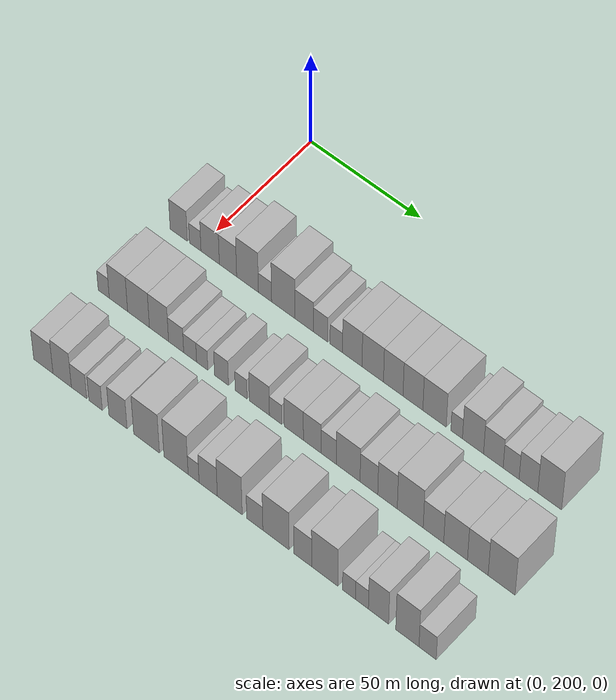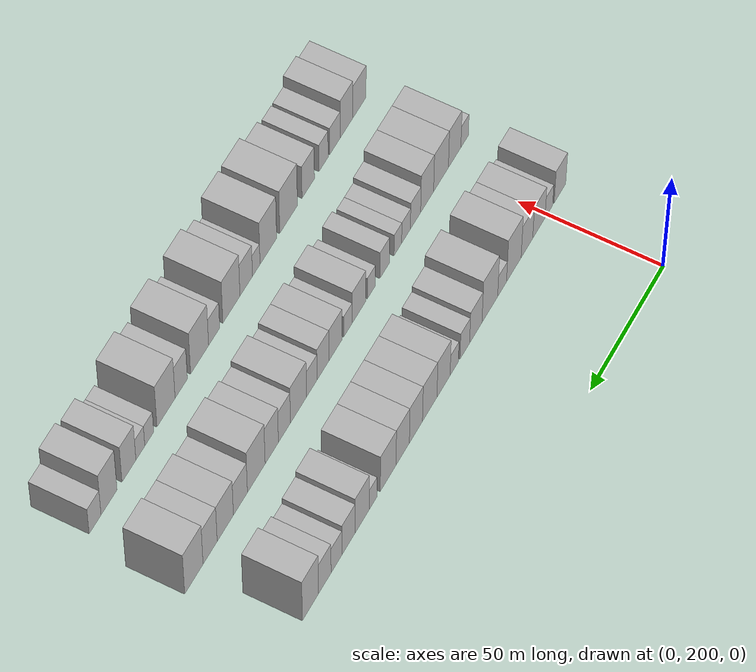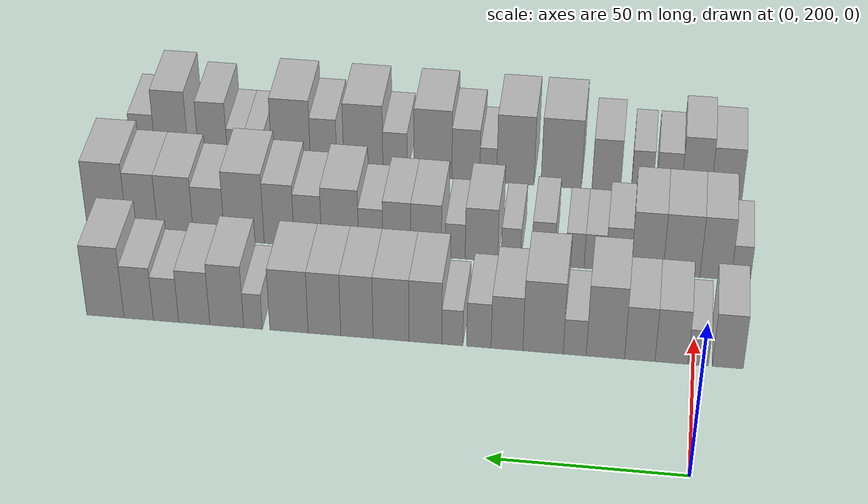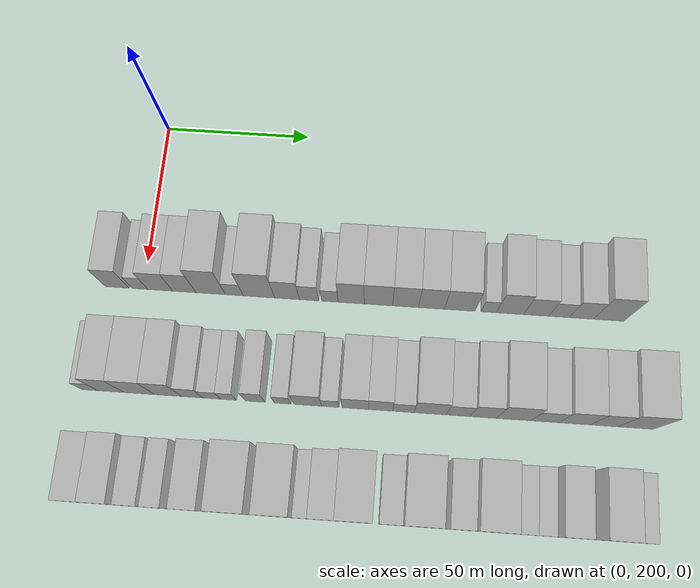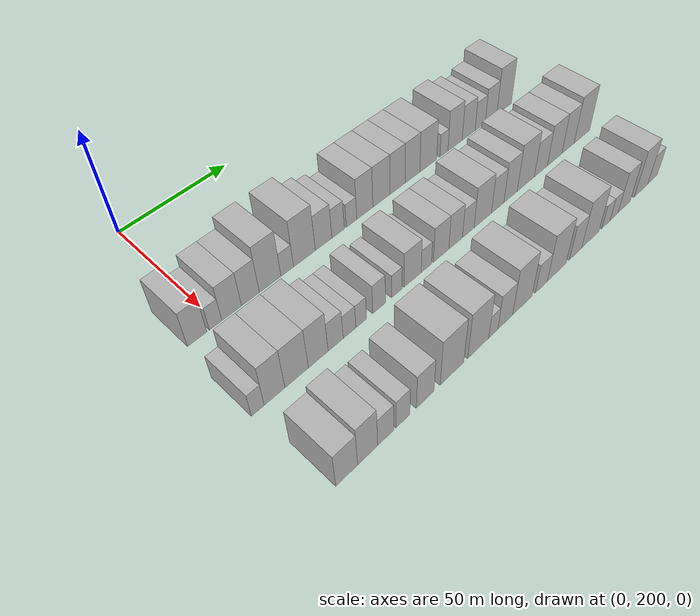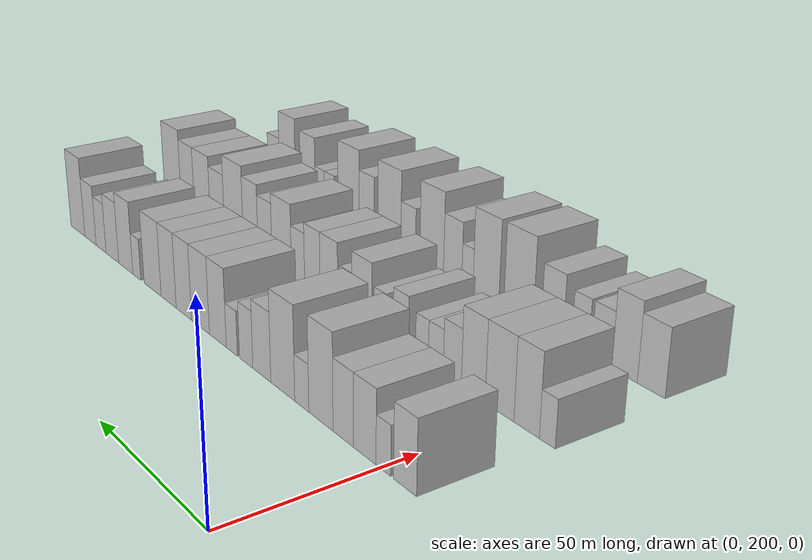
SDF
<sdf version="1.6">
 <world name="default">
  <model name="building_61">
   <static>1</static>
   <pose>50.0000 191.2016 0 0.000000 0.000000 0.000000</pose>
   <link name="link">
    <pose>0 0 9.00 0 0 0</pose>
    <collision name="collision"><geometry><box><size>20.0000 7.9686 18.0000</size></box></geometry></collision>
    <visual name="visual">
     <cast_shadows>0</cast_shadows>
     <geometry><box><size>20.0000 7.9686 18.0000</size></box></geometry>
     <material>
      <script>
       <uri>model://HANNAS_wall/materials/scripts</uri>
       <uri>model://HANNAS_wall/materials/textures</uri>
       <name>vrc/HANNAS_wall</name>
      </script>
     </material>
    </visual>
   </link>
  </model>
  <model name="building_62">
   <static>1</static>
   <pose>50.0000 198.8289 0 0.000000 0.000000 0.000000</pose>
   <link name="link">
    <pose>0 0 6.00 0 0 0</pose>
    <collision name="collision"><geometry><box><size>20.0000 5.2860 12.0000</size></box></geometry></collision>
    <visual name="visual">
     <cast_shadows>0</cast_shadows>
     <geometry><box><size>20.0000 5.2860 12.0000</size></box></geometry>
     <material>
      <script>
       <uri>model://HANNAS_wall/materials/scripts</uri>
       <uri>model://HANNAS_wall/materials/textures</uri>
       <name>vrc/HANNAS_wall</name>
      </script>
     </material>
    </visual>
   </link>
  </model>
  <model name="building_63">
   <static>1</static>
   <pose>50.0000 205.6955 0 0.000000 0.000000 0.000000</pose>
   <link name="link">
    <pose>0 0 9.00 0 0 0</pose>
    <collision name="collision"><geometry><box><size>20.0000 8.4470 18.0000</size></box></geometry></collision>
    <visual name="visual">
     <cast_shadows>0</cast_shadows>
     <geometry><box><size>20.0000 8.4470 18.0000</size></box></geometry>
     <material>
      <script>
       <uri>model://HANNAS_wall/materials/scripts</uri>
       <uri>model://HANNAS_wall/materials/textures</uri>
       <name>vrc/HANNAS_wall</name>
      </script>
     </material>
    </visual>
   </link>
  </model>
  <model name="building_64">
   <static>1</static>
   <pose>50.0000 213.8667 0 0.000000 0.000000 0.000000</pose>
   <link name="link">
    <pose>0 0 9.00 0 0 0</pose>
    <collision name="collision"><geometry><box><size>20.0000 7.8954 18.0000</size></box></geometry></collision>
    <visual name="visual">
     <cast_shadows>0</cast_shadows>
     <geometry><box><size>20.0000 7.8954 18.0000</size></box></geometry>
     <material>
      <script>
       <uri>model://HANNAS_wall/materials/scripts</uri>
       <uri>model://HANNAS_wall/materials/textures</uri>
       <name>vrc/HANNAS_wall</name>
      </script>
     </material>
    </visual>
   </link>
  </model>
  <model name="building_65">
   <static>1</static>
   <pose>50.0000 222.7764 0 0.000000 0.000000 0.000000</pose>
   <link name="link">
    <pose>0 0 12.00 0 0 0</pose>
    <collision name="collision"><geometry><box><size>20.0000 9.9240 24.0000</size></box></geometry></collision>
    <visual name="visual">
     <cast_shadows>0</cast_shadows>
     <geometry><box><size>20.0000 9.9240 24.0000</size></box></geometry>
     <material>
      <script>
       <uri>model://HANNAS_wall/materials/scripts</uri>
       <uri>model://HANNAS_wall/materials/textures</uri>
       <name>vrc/HANNAS_wall</name>
      </script>
     </material>
    </visual>
   </link>
  </model>
  <model name="building_66">
   <static>1</static>
   <pose>50.0000 230.7208 0 0.000000 0.000000 0.000000</pose>
   <link name="link">
    <pose>0 0 6.00 0 0 0</pose>
    <collision name="collision"><geometry><box><size>20.0000 5.9649 12.0000</size></box></geometry></collision>
    <visual name="visual">
     <cast_shadows>0</cast_shadows>
     <geometry><box><size>20.0000 5.9649 12.0000</size></box></geometry>
     <material>
      <script>
       <uri>model://HANNAS_wall/materials/scripts</uri>
       <uri>model://HANNAS_wall/materials/textures</uri>
       <name>vrc/HANNAS_wall</name>
      </script>
     </material>
    </visual>
   </link>
  </model>
  <model name="building_67">
   <static>1</static>
   <pose>50.0000 238.9798 0 0.000000 0.000000 0.000000</pose>
   <link name="link">
    <pose>0 0 12.00 0 0 0</pose>
    <collision name="collision"><geometry><box><size>20.0000 10.5530 24.0000</size></box></geometry></collision>
    <visual name="visual">
     <cast_shadows>0</cast_shadows>
     <geometry><box><size>20.0000 10.5530 24.0000</size></box></geometry>
     <material>
      <script>
       <uri>model://HANNAS_wall/materials/scripts</uri>
       <uri>model://HANNAS_wall/materials/textures</uri>
       <name>vrc/HANNAS_wall</name>
      </script>
     </material>
    </visual>
   </link>
  </model>
  <model name="building_68">
   <static>1</static>
   <pose>50.0000 248.4079 0 0.000000 0.000000 0.000000</pose>
   <link name="link">
    <pose>0 0 9.00 0 0 0</pose>
    <collision name="collision"><geometry><box><size>20.0000 8.3033 18.0000</size></box></geometry></collision>
    <visual name="visual">
     <cast_shadows>0</cast_shadows>
     <geometry><box><size>20.0000 8.3033 18.0000</size></box></geometry>
     <material>
      <script>
       <uri>model://HANNAS_wall/materials/scripts</uri>
       <uri>model://HANNAS_wall/materials/textures</uri>
       <name>vrc/HANNAS_wall</name>
      </script>
     </material>
    </visual>
   </link>
  </model>
  <model name="building_69">
   <static>1</static>
   <pose>50.0000 255.7667 0 0.000000 0.000000 0.000000</pose>
   <link name="link">
    <pose>0 0 7.50 0 0 0</pose>
    <collision name="collision"><geometry><box><size>20.0000 6.4144 15.0000</size></box></geometry></collision>
    <visual name="visual">
     <cast_shadows>0</cast_shadows>
     <geometry><box><size>20.0000 6.4144 15.0000</size></box></geometry>
     <material>
      <script>
       <uri>model://HANNAS_wall/materials/scripts</uri>
       <uri>model://HANNAS_wall/materials/textures</uri>
       <name>vrc/HANNAS_wall</name>
      </script>
     </material>
    </visual>
   </link>
  </model>
  <model name="building_70">
   <static>1</static>
   <pose>50.0000 262.7397 0 0.000000 0.000000 0.000000</pose>
   <link name="link">
    <pose>0 0 6.00 0 0 0</pose>
    <collision name="collision"><geometry><box><size>20.0000 5.5316 12.0000</size></box></geometry></collision>
    <visual name="visual">
     <cast_shadows>0</cast_shadows>
     <geometry><box><size>20.0000 5.5316 12.0000</size></box></geometry>
     <material>
      <script>
       <uri>model://HANNAS_wall/materials/scripts</uri>
       <uri>model://HANNAS_wall/materials/textures</uri>
       <name>vrc/HANNAS_wall</name>
      </script>
     </material>
    </visual>
   </link>
  </model>
  <model name="building_71">
   <static>1</static>
   <pose>50.0000 269.8401 0 0.000000 0.000000 0.000000</pose>
   <link name="link">
    <pose>0 0 10.50 0 0 0</pose>
    <collision name="collision"><geometry><box><size>20.0000 8.6693 21.0000</size></box></geometry></collision>
    <visual name="visual">
     <cast_shadows>0</cast_shadows>
     <geometry><box><size>20.0000 8.6693 21.0000</size></box></geometry>
     <material>
      <script>
       <uri>model://HANNAS_wall/materials/scripts</uri>
       <uri>model://HANNAS_wall/materials/textures</uri>
       <name>vrc/HANNAS_wall</name>
      </script>
     </material>
    </visual>
   </link>
  </model>
  <model name="building_72">
   <static>1</static>
   <pose>50.0000 278.9165 0 0.000000 0.000000 0.000000</pose>
   <link name="link">
    <pose>0 0 10.50 0 0 0</pose>
    <collision name="collision"><geometry><box><size>20.0000 9.4835 21.0000</size></box></geometry></collision>
    <visual name="visual">
     <cast_shadows>0</cast_shadows>
     <geometry><box><size>20.0000 9.4835 21.0000</size></box></geometry>
     <material>
      <script>
       <uri>model://HANNAS_wall/materials/scripts</uri>
       <uri>model://HANNAS_wall/materials/textures</uri>
       <name>vrc/HANNAS_wall</name>
      </script>
     </material>
    </visual>
   </link>
  </model>
  <model name="building_73">
   <static>1</static>
   <pose>50.0000 287.9400 0 0.000000 0.000000 0.000000</pose>
   <link name="link">
    <pose>0 0 10.50 0 0 0</pose>
    <collision name="collision"><geometry><box><size>20.0000 8.5635 21.0000</size></box></geometry></collision>
    <visual name="visual">
     <cast_shadows>0</cast_shadows>
     <geometry><box><size>20.0000 8.5635 21.0000</size></box></geometry>
     <material>
      <script>
       <uri>model://HANNAS_wall/materials/scripts</uri>
       <uri>model://HANNAS_wall/materials/textures</uri>
       <name>vrc/HANNAS_wall</name>
      </script>
     </material>
    </visual>
   </link>
  </model>
  <model name="building_74">
   <static>1</static>
   <pose>50.0000 296.5564 0 0.000000 0.000000 0.000000</pose>
   <link name="link">
    <pose>0 0 10.50 0 0 0</pose>
    <collision name="collision"><geometry><box><size>20.0000 8.6693 21.0000</size></box></geometry></collision>
    <visual name="visual">
     <cast_shadows>0</cast_shadows>
     <geometry><box><size>20.0000 8.6693 21.0000</size></box></geometry>
     <material>
      <script>
       <uri>model://HANNAS_wall/materials/scripts</uri>
       <uri>model://HANNAS_wall/materials/textures</uri>
       <name>vrc/HANNAS_wall</name>
      </script>
     </material>
    </visual>
   </link>
  </model>
  <model name="building_75">
   <static>1</static>
   <pose>50.0000 305.9884 0 0.000000 0.000000 0.000000</pose>
   <link name="link">
    <pose>0 0 10.50 0 0 0</pose>
    <collision name="collision"><geometry><box><size>20.0000 10.1946 21.0000</size></box></geometry></collision>
    <visual name="visual">
     <cast_shadows>0</cast_shadows>
     <geometry><box><size>20.0000 10.1946 21.0000</size></box></geometry>
     <material>
      <script>
       <uri>model://HANNAS_wall/materials/scripts</uri>
       <uri>model://HANNAS_wall/materials/textures</uri>
       <name>vrc/HANNAS_wall</name>
      </script>
     </material>
    </visual>
   </link>
  </model>
  <model name="building_76">
   <static>1</static>
   <pose>50.0000 315.5898 0 0.000000 0.000000 0.000000</pose>
   <link name="link">
    <pose>0 0 6.00 0 0 0</pose>
    <collision name="collision"><geometry><box><size>20.0000 5.0083 12.0000</size></box></geometry></collision>
    <visual name="visual">
     <cast_shadows>0</cast_shadows>
     <geometry><box><size>20.0000 5.0083 12.0000</size></box></geometry>
     <material>
      <script>
       <uri>model://HANNAS_wall/materials/scripts</uri>
       <uri>model://HANNAS_wall/materials/textures</uri>
       <name>vrc/HANNAS_wall</name>
      </script>
     </material>
    </visual>
   </link>
  </model>
  <model name="building_77">
   <static>1</static>
   <pose>50.0000 322.6379 0 0.000000 0.000000 0.000000</pose>
   <link name="link">
    <pose>0 0 10.50 0 0 0</pose>
    <collision name="collision"><geometry><box><size>20.0000 9.0878 21.0000</size></box></geometry></collision>
    <visual name="visual">
     <cast_shadows>0</cast_shadows>
     <geometry><box><size>20.0000 9.0878 21.0000</size></box></geometry>
     <material>
      <script>
       <uri>model://HANNAS_wall/materials/scripts</uri>
       <uri>model://HANNAS_wall/materials/textures</uri>
       <name>vrc/HANNAS_wall</name>
      </script>
     </material>
    </visual>
   </link>
  </model>
  <model name="building_78">
   <static>1</static>
   <pose>50.0000 331.3846 0 0.000000 0.000000 0.000000</pose>
   <link name="link">
    <pose>0 0 9.00 0 0 0</pose>
    <collision name="collision"><geometry><box><size>20.0000 8.4055 18.0000</size></box></geometry></collision>
    <visual name="visual">
     <cast_shadows>0</cast_shadows>
     <geometry><box><size>20.0000 8.4055 18.0000</size></box></geometry>
     <material>
      <script>
       <uri>model://HANNAS_wall/materials/scripts</uri>
       <uri>model://HANNAS_wall/materials/textures</uri>
       <name>vrc/HANNAS_wall</name>
      </script>
     </material>
    </visual>
   </link>
  </model>
  <model name="building_79">
   <static>1</static>
   <pose>50.0000 338.9868 0 0.000000 0.000000 0.000000</pose>
   <link name="link">
    <pose>0 0 7.50 0 0 0</pose>
    <collision name="collision"><geometry><box><size>20.0000 6.7990 15.0000</size></box></geometry></collision>
    <visual name="visual">
     <cast_shadows>0</cast_shadows>
     <geometry><box><size>20.0000 6.7990 15.0000</size></box></geometry>
     <material>
      <script>
       <uri>model://HANNAS_wall/materials/scripts</uri>
       <uri>model://HANNAS_wall/materials/textures</uri>
       <name>vrc/HANNAS_wall</name>
      </script>
     </material>
    </visual>
   </link>
  </model>
  <model name="building_80">
   <static>1</static>
   <pose>50.0000 346.3585 0 0.000000 0.000000 0.000000</pose>
   <link name="link">
    <pose>0 0 9.00 0 0 0</pose>
    <collision name="collision"><geometry><box><size>20.0000 7.9446 18.0000</size></box></geometry></collision>
    <visual name="visual">
     <cast_shadows>0</cast_shadows>
     <geometry><box><size>20.0000 7.9446 18.0000</size></box></geometry>
     <material>
      <script>
       <uri>model://HANNAS_wall/materials/scripts</uri>
       <uri>model://HANNAS_wall/materials/textures</uri>
       <name>vrc/HANNAS_wall</name>
      </script>
     </material>
    </visual>
   </link>
  </model>
  <model name="building_81">
   <static>1</static>
   <pose>50.0000 355.3782 0 0.000000 0.000000 0.000000</pose>
   <link name="link">
    <pose>0 0 12.00 0 0 0</pose>
    <collision name="collision"><geometry><box><size>20.0000 10.0947 24.0000</size></box></geometry></collision>
    <visual name="visual">
     <cast_shadows>0</cast_shadows>
     <geometry><box><size>20.0000 10.0947 24.0000</size></box></geometry>
     <material>
      <script>
       <uri>model://HANNAS_wall/materials/scripts</uri>
       <uri>model://HANNAS_wall/materials/textures</uri>
       <name>vrc/HANNAS_wall</name>
      </script>
     </material>
    </visual>
   </link>
  </model>
  <model name="building_145">
   <static>1</static>
   <pose>85.0000 187.9739 0 0.000000 0.000000 0.000000</pose>
   <link name="link">
    <pose>0 0 6.00 0 0 0</pose>
    <collision name="collision"><geometry><box><size>20.0000 5.1245 12.0000</size></box></geometry></collision>
    <visual name="visual">
     <cast_shadows>0</cast_shadows>
     <geometry><box><size>20.0000 5.1245 12.0000</size></box></geometry>
     <material>
      <script>
       <uri>model://HANNAS_wall/materials/scripts</uri>
       <uri>model://HANNAS_wall/materials/textures</uri>
       <name>vrc/HANNAS_wall</name>
      </script>
     </material>
    </visual>
   </link>
  </model>
  <model name="building_146">
   <static>1</static>
   <pose>85.0000 194.7652 0 0.000000 0.000000 0.000000</pose>
   <link name="link">
    <pose>0 0 10.50 0 0 0</pose>
    <collision name="collision"><geometry><box><size>20.0000 8.4580 21.0000</size></box></geometry></collision>
    <visual name="visual">
     <cast_shadows>0</cast_shadows>
     <geometry><box><size>20.0000 8.4580 21.0000</size></box></geometry>
     <material>
      <script>
       <uri>model://HANNAS_wall/materials/scripts</uri>
       <uri>model://HANNAS_wall/materials/textures</uri>
       <name>vrc/HANNAS_wall</name>
      </script>
     </material>
    </visual>
   </link>
  </model>
  <model name="building_147">
   <static>1</static>
   <pose>85.0000 204.0003 0 0.000000 0.000000 0.000000</pose>
   <link name="link">
    <pose>0 0 10.50 0 0 0</pose>
    <collision name="collision"><geometry><box><size>20.0000 10.0123 21.0000</size></box></geometry></collision>
    <visual name="visual">
     <cast_shadows>0</cast_shadows>
     <geometry><box><size>20.0000 10.0123 21.0000</size></box></geometry>
     <material>
      <script>
       <uri>model://HANNAS_wall/materials/scripts</uri>
       <uri>model://HANNAS_wall/materials/textures</uri>
       <name>vrc/HANNAS_wall</name>
      </script>
     </material>
    </visual>
   </link>
  </model>
  <model name="building_148">
   <static>1</static>
   <pose>85.0000 213.3714 0 0.000000 0.000000 0.000000</pose>
   <link name="link">
    <pose>0 0 10.50 0 0 0</pose>
    <collision name="collision"><geometry><box><size>20.0000 8.7300 21.0000</size></box></geometry></collision>
    <visual name="visual">
     <cast_shadows>0</cast_shadows>
     <geometry><box><size>20.0000 8.7300 21.0000</size></box></geometry>
     <material>
      <script>
       <uri>model://HANNAS_wall/materials/scripts</uri>
       <uri>model://HANNAS_wall/materials/textures</uri>
       <name>vrc/HANNAS_wall</name>
      </script>
     </material>
    </visual>
   </link>
  </model>
  <model name="building_149">
   <static>1</static>
   <pose>85.0000 221.1716 0 0.000000 0.000000 0.000000</pose>
   <link name="link">
    <pose>0 0 7.50 0 0 0</pose>
    <collision name="collision"><geometry><box><size>20.0000 6.8703 15.0000</size></box></geometry></collision>
    <visual name="visual">
     <cast_shadows>0</cast_shadows>
     <geometry><box><size>20.0000 6.8703 15.0000</size></box></geometry>
     <material>
      <script>
       <uri>model://HANNAS_wall/materials/scripts</uri>
       <uri>model://HANNAS_wall/materials/textures</uri>
       <name>vrc/HANNAS_wall</name>
      </script>
     </material>
    </visual>
   </link>
  </model>
  <model name="building_150">
   <static>1</static>
   <pose>85.0000 227.5275 0 0.000000 0.000000 0.000000</pose>
   <link name="link">
    <pose>0 0 6.00 0 0 0</pose>
    <collision name="collision"><geometry><box><size>20.0000 5.8414 12.0000</size></box></geometry></collision>
    <visual name="visual">
     <cast_shadows>0</cast_shadows>
     <geometry><box><size>20.0000 5.8414 12.0000</size></box></geometry>
     <material>
      <script>
       <uri>model://HANNAS_wall/materials/scripts</uri>
       <uri>model://HANNAS_wall/materials/textures</uri>
       <name>vrc/HANNAS_wall</name>
      </script>
     </material>
    </visual>
   </link>
  </model>
  <model name="building_151">
   <static>1</static>
   <pose>85.0000 232.9910 0 0.000000 0.000000 0.000000</pose>
   <link name="link">
    <pose>0 0 6.00 0 0 0</pose>
    <collision name="collision"><geometry><box><size>20.0000 5.0857 12.0000</size></box></geometry></collision>
    <visual name="visual">
     <cast_shadows>0</cast_shadows>
     <geometry><box><size>20.0000 5.0857 12.0000</size></box></geometry>
     <material>
      <script>
       <uri>model://HANNAS_wall/materials/scripts</uri>
       <uri>model://HANNAS_wall/materials/textures</uri>
       <name>vrc/HANNAS_wall</name>
      </script>
     </material>
    </visual>
   </link>
  </model>
  <model name="building_152">
   <static>1</static>
   <pose>85.0000 241.6761 0 0.000000 0.000000 0.000000</pose>
   <link name="link">
    <pose>0 0 7.50 0 0 0</pose>
    <collision name="collision"><geometry><box><size>20.0000 6.2844 15.0000</size></box></geometry></collision>
    <visual name="visual">
     <cast_shadows>0</cast_shadows>
     <geometry><box><size>20.0000 6.2844 15.0000</size></box></geometry>
     <material>
      <script>
       <uri>model://HANNAS_wall/materials/scripts</uri>
       <uri>model://HANNAS_wall/materials/textures</uri>
       <name>vrc/HANNAS_wall</name>
      </script>
     </material>
    </visual>
   </link>
  </model>
  <model name="building_153">
   <static>1</static>
   <pose>85.0000 250.4769 0 0.000000 0.000000 0.000000</pose>
   <link name="link">
    <pose>0 0 6.00 0 0 0</pose>
    <collision name="collision"><geometry><box><size>20.0000 5.3172 12.0000</size></box></geometry></collision>
    <visual name="visual">
     <cast_shadows>0</cast_shadows>
     <geometry><box><size>20.0000 5.3172 12.0000</size></box></geometry>
     <material>
      <script>
       <uri>model://HANNAS_wall/materials/scripts</uri>
       <uri>model://HANNAS_wall/materials/textures</uri>
       <name>vrc/HANNAS_wall</name>
      </script>
     </material>
    </visual>
   </link>
  </model>
  <model name="building_154">
   <static>1</static>
   <pose>85.0000 258.5991 0 0.000000 0.000000 0.000000</pose>
   <link name="link">
    <pose>0 0 9.00 0 0 0</pose>
    <collision name="collision"><geometry><box><size>20.0000 8.9271 18.0000</size></box></geometry></collision>
    <visual name="visual">
     <cast_shadows>0</cast_shadows>
     <geometry><box><size>20.0000 8.9271 18.0000</size></box></geometry>
     <material>
      <script>
       <uri>model://HANNAS_wall/materials/scripts</uri>
       <uri>model://HANNAS_wall/materials/textures</uri>
       <name>vrc/HANNAS_wall</name>
      </script>
     </material>
    </visual>
   </link>
  </model>
  <model name="building_155">
   <static>1</static>
   <pose>85.0000 265.8336 0 0.000000 0.000000 0.000000</pose>
   <link name="link">
    <pose>0 0 6.00 0 0 0</pose>
    <collision name="collision"><geometry><box><size>20.0000 5.5420 12.0000</size></box></geometry></collision>
    <visual name="visual">
     <cast_shadows>0</cast_shadows>
     <geometry><box><size>20.0000 5.5420 12.0000</size></box></geometry>
     <material>
      <script>
       <uri>model://HANNAS_wall/materials/scripts</uri>
       <uri>model://HANNAS_wall/materials/textures</uri>
       <name>vrc/HANNAS_wall</name>
      </script>
     </material>
    </visual>
   </link>
  </model>
  <model name="building_156">
   <static>1</static>
   <pose>85.0000 273.8405 0 0.000000 0.000000 0.000000</pose>
   <link name="link">
    <pose>0 0 9.00 0 0 0</pose>
    <collision name="collision"><geometry><box><size>20.0000 8.4717 18.0000</size></box></geometry></collision>
    <visual name="visual">
     <cast_shadows>0</cast_shadows>
     <geometry><box><size>20.0000 8.4717 18.0000</size></box></geometry>
     <material>
      <script>
       <uri>model://HANNAS_wall/materials/scripts</uri>
       <uri>model://HANNAS_wall/materials/textures</uri>
       <name>vrc/HANNAS_wall</name>
      </script>
     </material>
    </visual>
   </link>
  </model>
  <model name="building_157">
   <static>1</static>
   <pose>85.0000 281.9474 0 0.000000 0.000000 0.000000</pose>
   <link name="link">
    <pose>0 0 9.00 0 0 0</pose>
    <collision name="collision"><geometry><box><size>20.0000 7.7423 18.0000</size></box></geometry></collision>
    <visual name="visual">
     <cast_shadows>0</cast_shadows>
     <geometry><box><size>20.0000 7.7423 18.0000</size></box></geometry>
     <material>
      <script>
       <uri>model://HANNAS_wall/materials/scripts</uri>
       <uri>model://HANNAS_wall/materials/textures</uri>
       <name>vrc/HANNAS_wall</name>
      </script>
     </material>
    </visual>
   </link>
  </model>
  <model name="building_158">
   <static>1</static>
   <pose>85.0000 289.1869 0 0.000000 0.000000 0.000000</pose>
   <link name="link">
    <pose>0 0 7.50 0 0 0</pose>
    <collision name="collision"><geometry><box><size>20.0000 6.7366 15.0000</size></box></geometry></collision>
    <visual name="visual">
     <cast_shadows>0</cast_shadows>
     <geometry><box><size>20.0000 6.7366 15.0000</size></box></geometry>
     <material>
      <script>
       <uri>model://HANNAS_wall/materials/scripts</uri>
       <uri>model://HANNAS_wall/materials/textures</uri>
       <name>vrc/HANNAS_wall</name>
      </script>
     </material>
    </visual>
   </link>
  </model>
  <model name="building_159">
   <static>1</static>
   <pose>85.0000 297.7067 0 0.000000 0.000000 0.000000</pose>
   <link name="link">
    <pose>0 0 10.50 0 0 0</pose>
    <collision name="collision"><geometry><box><size>20.0000 10.3029 21.0000</size></box></geometry></collision>
    <visual name="visual">
     <cast_shadows>0</cast_shadows>
     <geometry><box><size>20.0000 10.3029 21.0000</size></box></geometry>
     <material>
      <script>
       <uri>model://HANNAS_wall/materials/scripts</uri>
       <uri>model://HANNAS_wall/materials/textures</uri>
       <name>vrc/HANNAS_wall</name>
      </script>
     </material>
    </visual>
   </link>
  </model>
  <model name="building_160">
   <static>1</static>
   <pose>85.0000 306.6973 0 0.000000 0.000000 0.000000</pose>
   <link name="link">
    <pose>0 0 9.00 0 0 0</pose>
    <collision name="collision"><geometry><box><size>20.0000 7.6783 18.0000</size></box></geometry></collision>
    <visual name="visual">
     <cast_shadows>0</cast_shadows>
     <geometry><box><size>20.0000 7.6783 18.0000</size></box></geometry>
     <material>
      <script>
       <uri>model://HANNAS_wall/materials/scripts</uri>
       <uri>model://HANNAS_wall/materials/textures</uri>
       <name>vrc/HANNAS_wall</name>
      </script>
     </material>
    </visual>
   </link>
  </model>
  <model name="building_161">
   <static>1</static>
   <pose>85.0000 314.7392 0 0.000000 0.000000 0.000000</pose>
   <link name="link">
    <pose>0 0 10.50 0 0 0</pose>
    <collision name="collision"><geometry><box><size>20.0000 8.4056 21.0000</size></box></geometry></collision>
    <visual name="visual">
     <cast_shadows>0</cast_shadows>
     <geometry><box><size>20.0000 8.4056 21.0000</size></box></geometry>
     <material>
      <script>
       <uri>model://HANNAS_wall/materials/scripts</uri>
       <uri>model://HANNAS_wall/materials/textures</uri>
       <name>vrc/HANNAS_wall</name>
      </script>
     </material>
    </visual>
   </link>
  </model>
  <model name="building_162">
   <static>1</static>
   <pose>85.0000 324.5052 0 0.000000 0.000000 0.000000</pose>
   <link name="link">
    <pose>0 0 12.00 0 0 0</pose>
    <collision name="collision"><geometry><box><size>20.0000 11.1265 24.0000</size></box></geometry></collision>
    <visual name="visual">
     <cast_shadows>0</cast_shadows>
     <geometry><box><size>20.0000 11.1265 24.0000</size></box></geometry>
     <material>
      <script>
       <uri>model://HANNAS_wall/materials/scripts</uri>
       <uri>model://HANNAS_wall/materials/textures</uri>
       <name>vrc/HANNAS_wall</name>
      </script>
     </material>
    </visual>
   </link>
  </model>
  <model name="building_163">
   <static>1</static>
   <pose>85.0000 334.4461 0 0.000000 0.000000 0.000000</pose>
   <link name="link">
    <pose>0 0 9.00 0 0 0</pose>
    <collision name="collision"><geometry><box><size>20.0000 8.7552 18.0000</size></box></geometry></collision>
    <visual name="visual">
     <cast_shadows>0</cast_shadows>
     <geometry><box><size>20.0000 8.7552 18.0000</size></box></geometry>
     <material>
      <script>
       <uri>model://HANNAS_wall/materials/scripts</uri>
       <uri>model://HANNAS_wall/materials/textures</uri>
       <name>vrc/HANNAS_wall</name>
      </script>
     </material>
    </visual>
   </link>
  </model>
  <model name="building_164">
   <static>1</static>
   <pose>85.0000 343.8680 0 0.000000 0.000000 0.000000</pose>
   <link name="link">
    <pose>0 0 10.50 0 0 0</pose>
    <collision name="collision"><geometry><box><size>20.0000 10.0886 21.0000</size></box></geometry></collision>
    <visual name="visual">
     <cast_shadows>0</cast_shadows>
     <geometry><box><size>20.0000 10.0886 21.0000</size></box></geometry>
     <material>
      <script>
       <uri>model://HANNAS_wall/materials/scripts</uri>
       <uri>model://HANNAS_wall/materials/textures</uri>
       <name>vrc/HANNAS_wall</name>
      </script>
     </material>
    </visual>
   </link>
  </model>
  <model name="building_165">
   <static>1</static>
   <pose>85.0000 353.2773 0 0.000000 0.000000 0.000000</pose>
   <link name="link">
    <pose>0 0 10.50 0 0 0</pose>
    <collision name="collision"><geometry><box><size>20.0000 8.7298 21.0000</size></box></geometry></collision>
    <visual name="visual">
     <cast_shadows>0</cast_shadows>
     <geometry><box><size>20.0000 8.7298 21.0000</size></box></geometry>
     <material>
      <script>
       <uri>model://HANNAS_wall/materials/scripts</uri>
       <uri>model://HANNAS_wall/materials/textures</uri>
       <name>vrc/HANNAS_wall</name>
      </script>
     </material>
    </visual>
   </link>
  </model>
  <model name="building_166">
   <static>1</static>
   <pose>85.0000 363.2946 0 0.000000 0.000000 0.000000</pose>
   <link name="link">
    <pose>0 0 12.00 0 0 0</pose>
    <collision name="collision"><geometry><box><size>20.0000 11.3050 24.0000</size></box></geometry></collision>
    <visual name="visual">
     <cast_shadows>0</cast_shadows>
     <geometry><box><size>20.0000 11.3050 24.0000</size></box></geometry>
     <material>
      <script>
       <uri>model://HANNAS_wall/materials/scripts</uri>
       <uri>model://HANNAS_wall/materials/textures</uri>
       <name>vrc/HANNAS_wall</name>
      </script>
     </material>
    </visual>
   </link>
  </model>
  <model name="building_230">
   <static>1</static>
   <pose>120.0000 192.2198 0 0.000000 0.000000 0.000000</pose>
   <link name="link">
    <pose>0 0 9.00 0 0 0</pose>
    <collision name="collision"><geometry><box><size>20.0000 8.8581 18.0000</size></box></geometry></collision>
    <visual name="visual">
     <cast_shadows>0</cast_shadows>
     <geometry><box><size>20.0000 8.8581 18.0000</size></box></geometry>
     <material>
      <script>
       <uri>model://HANNAS_wall/materials/scripts</uri>
       <uri>model://HANNAS_wall/materials/textures</uri>
       <name>vrc/HANNAS_wall</name>
      </script>
     </material>
    </visual>
   </link>
  </model>
  <model name="building_231">
   <static>1</static>
   <pose>120.0000 200.8624 0 0.000000 0.000000 0.000000</pose>
   <link name="link">
    <pose>0 0 10.50 0 0 0</pose>
    <collision name="collision"><geometry><box><size>20.0000 8.4272 21.0000</size></box></geometry></collision>
    <visual name="visual">
     <cast_shadows>0</cast_shadows>
     <geometry><box><size>20.0000 8.4272 21.0000</size></box></geometry>
     <material>
      <script>
       <uri>model://HANNAS_wall/materials/scripts</uri>
       <uri>model://HANNAS_wall/materials/textures</uri>
       <name>vrc/HANNAS_wall</name>
      </script>
     </material>
    </visual>
   </link>
  </model>
  <model name="building_232">
   <static>1</static>
   <pose>120.0000 208.5790 0 0.000000 0.000000 0.000000</pose>
   <link name="link">
    <pose>0 0 7.50 0 0 0</pose>
    <collision name="collision"><geometry><box><size>20.0000 7.0061 15.0000</size></box></geometry></collision>
    <visual name="visual">
     <cast_shadows>0</cast_shadows>
     <geometry><box><size>20.0000 7.0061 15.0000</size></box></geometry>
     <material>
      <script>
       <uri>model://HANNAS_wall/materials/scripts</uri>
       <uri>model://HANNAS_wall/materials/textures</uri>
       <name>vrc/HANNAS_wall</name>
      </script>
     </material>
    </visual>
   </link>
  </model>
  <model name="building_233">
   <static>1</static>
   <pose>120.0000 216.1230 0 0.000000 0.000000 0.000000</pose>
   <link name="link">
    <pose>0 0 7.50 0 0 0</pose>
    <collision name="collision"><geometry><box><size>20.0000 6.0819 15.0000</size></box></geometry></collision>
    <visual name="visual">
     <cast_shadows>0</cast_shadows>
     <geometry><box><size>20.0000 6.0819 15.0000</size></box></geometry>
     <material>
      <script>
       <uri>model://HANNAS_wall/materials/scripts</uri>
       <uri>model://HANNAS_wall/materials/textures</uri>
       <name>vrc/HANNAS_wall</name>
      </script>
     </material>
    </visual>
   </link>
  </model>
  <model name="building_234">
   <static>1</static>
   <pose>120.0000 226.2572 0 0.000000 0.000000 0.000000</pose>
   <link name="link">
    <pose>0 0 9.00 0 0 0</pose>
    <collision name="collision"><geometry><box><size>20.0000 8.1865 18.0000</size></box></geometry></collision>
    <visual name="visual">
     <cast_shadows>0</cast_shadows>
     <geometry><box><size>20.0000 8.1865 18.0000</size></box></geometry>
     <material>
      <script>
       <uri>model://HANNAS_wall/materials/scripts</uri>
       <uri>model://HANNAS_wall/materials/textures</uri>
       <name>vrc/HANNAS_wall</name>
      </script>
     </material>
    </visual>
   </link>
  </model>
  <model name="building_235">
   <static>1</static>
   <pose>120.0000 239.1332 0 0.000000 0.000000 0.000000</pose>
   <link name="link">
    <pose>0 0 12.00 0 0 0</pose>
    <collision name="collision"><geometry><box><size>20.0000 11.5655 24.0000</size></box></geometry></collision>
    <visual name="visual">
     <cast_shadows>0</cast_shadows>
     <geometry><box><size>20.0000 11.5655 24.0000</size></box></geometry>
     <material>
      <script>
       <uri>model://HANNAS_wall/materials/scripts</uri>
       <uri>model://HANNAS_wall/materials/textures</uri>
       <name>vrc/HANNAS_wall</name>
      </script>
     </material>
    </visual>
   </link>
  </model>
  <model name="building_236">
   <static>1</static>
   <pose>120.0000 252.3003 0 0.000000 0.000000 0.000000</pose>
   <link name="link">
    <pose>0 0 12.00 0 0 0</pose>
    <collision name="collision"><geometry><box><size>20.0000 10.7688 24.0000</size></box></geometry></collision>
    <visual name="visual">
     <cast_shadows>0</cast_shadows>
     <geometry><box><size>20.0000 10.7688 24.0000</size></box></geometry>
     <material>
      <script>
       <uri>model://HANNAS_wall/materials/scripts</uri>
       <uri>model://HANNAS_wall/materials/textures</uri>
       <name>vrc/HANNAS_wall</name>
      </script>
     </material>
    </visual>
   </link>
  </model>
  <model name="building_237">
   <static>1</static>
   <pose>120.0000 260.1144 0 0.000000 0.000000 0.000000</pose>
   <link name="link">
    <pose>0 0 6.00 0 0 0</pose>
    <collision name="collision"><geometry><box><size>20.0000 4.8594 12.0000</size></box></geometry></collision>
    <visual name="visual">
     <cast_shadows>0</cast_shadows>
     <geometry><box><size>20.0000 4.8594 12.0000</size></box></geometry>
     <material>
      <script>
       <uri>model://HANNAS_wall/materials/scripts</uri>
       <uri>model://HANNAS_wall/materials/textures</uri>
       <name>vrc/HANNAS_wall</name>
      </script>
     </material>
    </visual>
   </link>
  </model>
  <model name="building_238">
   <static>1</static>
   <pose>120.0000 266.5765 0 0.000000 0.000000 0.000000</pose>
   <link name="link">
    <pose>0 0 9.00 0 0 0</pose>
    <collision name="collision"><geometry><box><size>20.0000 8.0646 18.0000</size></box></geometry></collision>
    <visual name="visual">
     <cast_shadows>0</cast_shadows>
     <geometry><box><size>20.0000 8.0646 18.0000</size></box></geometry>
     <material>
      <script>
       <uri>model://HANNAS_wall/materials/scripts</uri>
       <uri>model://HANNAS_wall/materials/textures</uri>
       <name>vrc/HANNAS_wall</name>
      </script>
     </material>
    </visual>
   </link>
  </model>
  <model name="building_239">
   <static>1</static>
   <pose>120.0000 276.0702 0 0.000000 0.000000 0.000000</pose>
   <link name="link">
    <pose>0 0 12.00 0 0 0</pose>
    <collision name="collision"><geometry><box><size>20.0000 10.9228 24.0000</size></box></geometry></collision>
    <visual name="visual">
     <cast_shadows>0</cast_shadows>
     <geometry><box><size>20.0000 10.9228 24.0000</size></box></geometry>
     <material>
      <script>
       <uri>model://HANNAS_wall/materials/scripts</uri>
       <uri>model://HANNAS_wall/materials/textures</uri>
       <name>vrc/HANNAS_wall</name>
      </script>
     </material>
    </visual>
   </link>
  </model>
  <model name="building_240">
   <static>1</static>
   <pose>120.0000 287.0473 0 0.000000 0.000000 0.000000</pose>
   <link name="link">
    <pose>0 0 7.50 0 0 0</pose>
    <collision name="collision"><geometry><box><size>20.0000 7.0314 15.0000</size></box></geometry></collision>
    <visual name="visual">
     <cast_shadows>0</cast_shadows>
     <geometry><box><size>20.0000 7.0314 15.0000</size></box></geometry>
     <material>
      <script>
       <uri>model://HANNAS_wall/materials/scripts</uri>
       <uri>model://HANNAS_wall/materials/textures</uri>
       <name>vrc/HANNAS_wall</name>
      </script>
     </material>
    </visual>
   </link>
  </model>
  <model name="building_241">
   <static>1</static>
   <pose>120.0000 296.2622 0 0.000000 0.000000 0.000000</pose>
   <link name="link">
    <pose>0 0 12.00 0 0 0</pose>
    <collision name="collision"><geometry><box><size>20.0000 11.3982 24.0000</size></box></geometry></collision>
    <visual name="visual">
     <cast_shadows>0</cast_shadows>
     <geometry><box><size>20.0000 11.3982 24.0000</size></box></geometry>
     <material>
      <script>
       <uri>model://HANNAS_wall/materials/scripts</uri>
       <uri>model://HANNAS_wall/materials/textures</uri>
       <name>vrc/HANNAS_wall</name>
      </script>
     </material>
    </visual>
   </link>
  </model>
  <model name="building_242">
   <static>1</static>
   <pose>120.0000 307.8118 0 0.000000 0.000000 0.000000</pose>
   <link name="link">
    <pose>0 0 9.00 0 0 0</pose>
    <collision name="collision"><geometry><box><size>20.0000 7.7011 18.0000</size></box></geometry></collision>
    <visual name="visual">
     <cast_shadows>0</cast_shadows>
     <geometry><box><size>20.0000 7.7011 18.0000</size></box></geometry>
     <material>
      <script>
       <uri>model://HANNAS_wall/materials/scripts</uri>
       <uri>model://HANNAS_wall/materials/textures</uri>
       <name>vrc/HANNAS_wall</name>
      </script>
     </material>
    </visual>
   </link>
  </model>
  <model name="building_243">
   <static>1</static>
   <pose>120.0000 317.3193 0 0.000000 0.000000 0.000000</pose>
   <link name="link">
    <pose>0 0 12.00 0 0 0</pose>
    <collision name="collision"><geometry><box><size>20.0000 11.3137 24.0000</size></box></geometry></collision>
    <visual name="visual">
     <cast_shadows>0</cast_shadows>
     <geometry><box><size>20.0000 11.3137 24.0000</size></box></geometry>
     <material>
      <script>
       <uri>model://HANNAS_wall/materials/scripts</uri>
       <uri>model://HANNAS_wall/materials/textures</uri>
       <name>vrc/HANNAS_wall</name>
      </script>
     </material>
    </visual>
   </link>
  </model>
  <model name="building_244">
   <static>1</static>
   <pose>120.0000 327.7424 0 0.000000 0.000000 0.000000</pose>
   <link name="link">
    <pose>0 0 6.00 0 0 0</pose>
    <collision name="collision"><geometry><box><size>20.0000 5.5325 12.0000</size></box></geometry></collision>
    <visual name="visual">
     <cast_shadows>0</cast_shadows>
     <geometry><box><size>20.0000 5.5325 12.0000</size></box></geometry>
     <material>
      <script>
       <uri>model://HANNAS_wall/materials/scripts</uri>
       <uri>model://HANNAS_wall/materials/textures</uri>
       <name>vrc/HANNAS_wall</name>
      </script>
     </material>
    </visual>
   </link>
  </model>
  <model name="building_245">
   <static>1</static>
   <pose>120.0000 333.2513 0 0.000000 0.000000 0.000000</pose>
   <link name="link">
    <pose>0 0 6.00 0 0 0</pose>
    <collision name="collision"><geometry><box><size>20.0000 5.4854 12.0000</size></box></geometry></collision>
    <visual name="visual">
     <cast_shadows>0</cast_shadows>
     <geometry><box><size>20.0000 5.4854 12.0000</size></box></geometry>
     <material>
      <script>
       <uri>model://HANNAS_wall/materials/scripts</uri>
       <uri>model://HANNAS_wall/materials/textures</uri>
       <name>vrc/HANNAS_wall</name>
      </script>
     </material>
    </visual>
   </link>
  </model>
  <model name="building_246">
   <static>1</static>
   <pose>120.0000 340.2711 0 0.000000 0.000000 0.000000</pose>
   <link name="link">
    <pose>0 0 10.50 0 0 0</pose>
    <collision name="collision"><geometry><box><size>20.0000 8.5541 21.0000</size></box></geometry></collision>
    <visual name="visual">
     <cast_shadows>0</cast_shadows>
     <geometry><box><size>20.0000 8.5541 21.0000</size></box></geometry>
     <material>
      <script>
       <uri>model://HANNAS_wall/materials/scripts</uri>
       <uri>model://HANNAS_wall/materials/textures</uri>
       <name>vrc/HANNAS_wall</name>
      </script>
     </material>
    </visual>
   </link>
  </model>
  <model name="building_247">
   <static>1</static>
   <pose>120.0000 352.4389 0 0.000000 0.000000 0.000000</pose>
   <link name="link">
    <pose>0 0 12.00 0 0 0</pose>
    <collision name="collision"><geometry><box><size>20.0000 9.7814 24.0000</size></box></geometry></collision>
    <visual name="visual">
     <cast_shadows>0</cast_shadows>
     <geometry><box><size>20.0000 9.7814 24.0000</size></box></geometry>
     <material>
      <script>
       <uri>model://HANNAS_wall/materials/scripts</uri>
       <uri>model://HANNAS_wall/materials/textures</uri>
       <name>vrc/HANNAS_wall</name>
      </script>
     </material>
    </visual>
   </link>
  </model>
  <model name="building_248">
   <static>1</static>
   <pose>120.0000 360.9424 0 0.000000 0.000000 0.000000</pose>
   <link name="link">
    <pose>0 0 7.50 0 0 0</pose>
    <collision name="collision"><geometry><box><size>20.0000 7.2255 15.0000</size></box></geometry></collision>
    <visual name="visual">
     <cast_shadows>0</cast_shadows>
     <geometry><box><size>20.0000 7.2255 15.0000</size></box></geometry>
     <material>
      <script>
       <uri>model://HANNAS_wall/materials/scripts</uri>
       <uri>model://HANNAS_wall/materials/textures</uri>
       <name>vrc/HANNAS_wall</name>
      </script>
     </material>
    </visual>
   </link>
  </model>
 </world>
</sdf>
